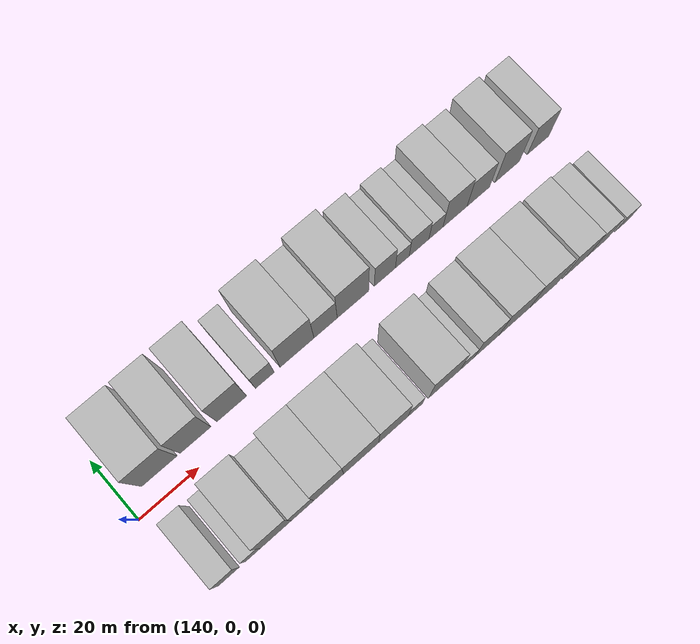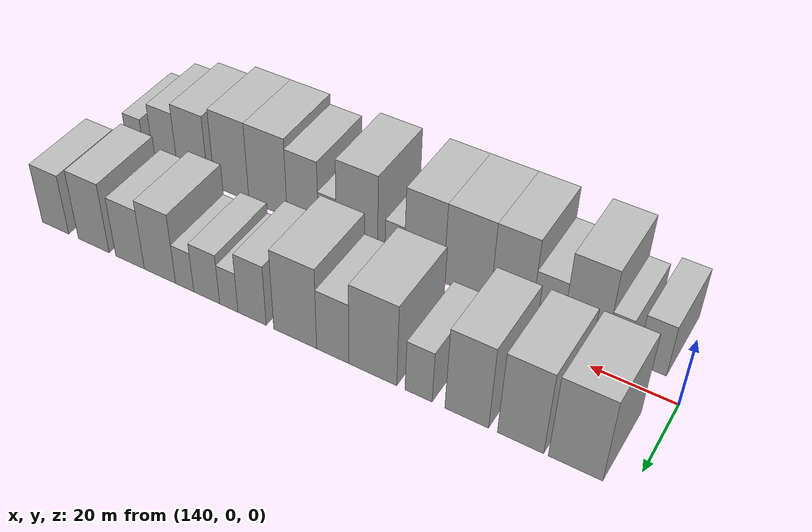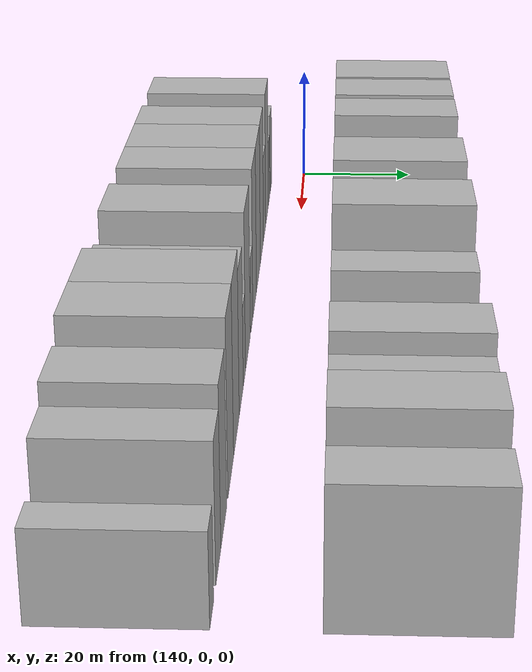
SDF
<sdf version="1.6">
 <world name="default">
  <model name="building_15">
   <static>1</static>
   <pose>151.7849 16.0000 0 0.000000 0.000000 1.570796</pose>
   <link name="link">
    <pose>0 0 12.00 0 0 0</pose>
    <collision name="collision"><geometry><box><size>20.0000 11.7231 24.0000</size></box></geometry></collision>
    <visual name="visual">
     <cast_shadows>0</cast_shadows>
     <geometry><box><size>20.0000 11.7231 24.0000</size></box></geometry>
     <material>
      <script>
       <uri>model://HANNAS_wall/materials/scripts</uri>
       <uri>model://HANNAS_wall/materials/textures</uri>
       <name>vrc/HANNAS_wall</name>
      </script>
     </material>
    </visual>
   </link>
  </model>
  <model name="building_16">
   <static>1</static>
   <pose>163.8093 16.0000 0 0.000000 0.000000 1.570796</pose>
   <link name="link">
    <pose>0 0 12.00 0 0 0</pose>
    <collision name="collision"><geometry><box><size>20.0000 10.3256 24.0000</size></box></geometry></collision>
    <visual name="visual">
     <cast_shadows>0</cast_shadows>
     <geometry><box><size>20.0000 10.3256 24.0000</size></box></geometry>
     <material>
      <script>
       <uri>model://HANNAS_wall/materials/scripts</uri>
       <uri>model://HANNAS_wall/materials/textures</uri>
       <name>vrc/HANNAS_wall</name>
      </script>
     </material>
    </visual>
   </link>
  </model>
  <model name="building_17">
   <static>1</static>
   <pose>176.0331 16.0000 0 0.000000 0.000000 1.570796</pose>
   <link name="link">
    <pose>0 0 12.00 0 0 0</pose>
    <collision name="collision"><geometry><box><size>20.0000 10.1220 24.0000</size></box></geometry></collision>
    <visual name="visual">
     <cast_shadows>0</cast_shadows>
     <geometry><box><size>20.0000 10.1220 24.0000</size></box></geometry>
     <material>
      <script>
       <uri>model://HANNAS_wall/materials/scripts</uri>
       <uri>model://HANNAS_wall/materials/textures</uri>
       <name>vrc/HANNAS_wall</name>
      </script>
     </material>
    </visual>
   </link>
  </model>
  <model name="building_18">
   <static>1</static>
   <pose>187.3365 16.0000 0 0.000000 0.000000 1.570796</pose>
   <link name="link">
    <pose>0 0 7.50 0 0 0</pose>
    <collision name="collision"><geometry><box><size>20.0000 6.4848 15.0000</size></box></geometry></collision>
    <visual name="visual">
     <cast_shadows>0</cast_shadows>
     <geometry><box><size>20.0000 6.4848 15.0000</size></box></geometry>
     <material>
      <script>
       <uri>model://HANNAS_wall/materials/scripts</uri>
       <uri>model://HANNAS_wall/materials/textures</uri>
       <name>vrc/HANNAS_wall</name>
      </script>
     </material>
    </visual>
   </link>
  </model>
  <model name="building_19">
   <static>1</static>
   <pose>198.4865 16.0000 0 0.000000 0.000000 1.570796</pose>
   <link name="link">
    <pose>0 0 12.00 0 0 0</pose>
    <collision name="collision"><geometry><box><size>20.0000 11.8150 24.0000</size></box></geometry></collision>
    <visual name="visual">
     <cast_shadows>0</cast_shadows>
     <geometry><box><size>20.0000 11.8150 24.0000</size></box></geometry>
     <material>
      <script>
       <uri>model://HANNAS_wall/materials/scripts</uri>
       <uri>model://HANNAS_wall/materials/textures</uri>
       <name>vrc/HANNAS_wall</name>
      </script>
     </material>
    </visual>
   </link>
  </model>
  <model name="building_20">
   <static>1</static>
   <pose>208.4849 16.0000 0 0.000000 0.000000 1.570796</pose>
   <link name="link">
    <pose>0 0 9.00 0 0 0</pose>
    <collision name="collision"><geometry><box><size>20.0000 8.1819 18.0000</size></box></geometry></collision>
    <visual name="visual">
     <cast_shadows>0</cast_shadows>
     <geometry><box><size>20.0000 8.1819 18.0000</size></box></geometry>
     <material>
      <script>
       <uri>model://HANNAS_wall/materials/scripts</uri>
       <uri>model://HANNAS_wall/materials/textures</uri>
       <name>vrc/HANNAS_wall</name>
      </script>
     </material>
    </visual>
   </link>
  </model>
  <model name="building_21">
   <static>1</static>
   <pose>218.1784 16.0000 0 0.000000 0.000000 1.570796</pose>
   <link name="link">
    <pose>0 0 12.00 0 0 0</pose>
    <collision name="collision"><geometry><box><size>20.0000 11.2052 24.0000</size></box></geometry></collision>
    <visual name="visual">
     <cast_shadows>0</cast_shadows>
     <geometry><box><size>20.0000 11.2052 24.0000</size></box></geometry>
     <material>
      <script>
       <uri>model://HANNAS_wall/materials/scripts</uri>
       <uri>model://HANNAS_wall/materials/textures</uri>
       <name>vrc/HANNAS_wall</name>
      </script>
     </material>
    </visual>
   </link>
  </model>
  <model name="building_22">
   <static>1</static>
   <pose>229.5810 16.0000 0 0.000000 0.000000 1.570796</pose>
   <link name="link">
    <pose>0 0 9.00 0 0 0</pose>
    <collision name="collision"><geometry><box><size>20.0000 7.5998 18.0000</size></box></geometry></collision>
    <visual name="visual">
     <cast_shadows>0</cast_shadows>
     <geometry><box><size>20.0000 7.5998 18.0000</size></box></geometry>
     <material>
      <script>
       <uri>model://HANNAS_wall/materials/scripts</uri>
       <uri>model://HANNAS_wall/materials/textures</uri>
       <name>vrc/HANNAS_wall</name>
      </script>
     </material>
    </visual>
   </link>
  </model>
  <model name="building_23">
   <static>1</static>
   <pose>235.9039 16.0000 0 0.000000 0.000000 1.570796</pose>
   <link name="link">
    <pose>0 0 6.00 0 0 0</pose>
    <collision name="collision"><geometry><box><size>20.0000 5.0461 12.0000</size></box></geometry></collision>
    <visual name="visual">
     <cast_shadows>0</cast_shadows>
     <geometry><box><size>20.0000 5.0461 12.0000</size></box></geometry>
     <material>
      <script>
       <uri>model://HANNAS_wall/materials/scripts</uri>
       <uri>model://HANNAS_wall/materials/textures</uri>
       <name>vrc/HANNAS_wall</name>
      </script>
     </material>
    </visual>
   </link>
  </model>
  <model name="building_24">
   <static>1</static>
   <pose>242.0188 16.0000 0 0.000000 0.000000 1.570796</pose>
   <link name="link">
    <pose>0 0 7.50 0 0 0</pose>
    <collision name="collision"><geometry><box><size>20.0000 7.1837 15.0000</size></box></geometry></collision>
    <visual name="visual">
     <cast_shadows>0</cast_shadows>
     <geometry><box><size>20.0000 7.1837 15.0000</size></box></geometry>
     <material>
      <script>
       <uri>model://HANNAS_wall/materials/scripts</uri>
       <uri>model://HANNAS_wall/materials/textures</uri>
       <name>vrc/HANNAS_wall</name>
      </script>
     </material>
    </visual>
   </link>
  </model>
  <model name="building_25">
   <static>1</static>
   <pose>248.1818 16.0000 0 0.000000 0.000000 1.570796</pose>
   <link name="link">
    <pose>0 0 6.00 0 0 0</pose>
    <collision name="collision"><geometry><box><size>20.0000 5.1423 12.0000</size></box></geometry></collision>
    <visual name="visual">
     <cast_shadows>0</cast_shadows>
     <geometry><box><size>20.0000 5.1423 12.0000</size></box></geometry>
     <material>
      <script>
       <uri>model://HANNAS_wall/materials/scripts</uri>
       <uri>model://HANNAS_wall/materials/textures</uri>
       <name>vrc/HANNAS_wall</name>
      </script>
     </material>
    </visual>
   </link>
  </model>
  <model name="building_26">
   <static>1</static>
   <pose>255.2734 16.0000 0 0.000000 0.000000 1.570796</pose>
   <link name="link">
    <pose>0 0 10.50 0 0 0</pose>
    <collision name="collision"><geometry><box><size>20.0000 9.0409 21.0000</size></box></geometry></collision>
    <visual name="visual">
     <cast_shadows>0</cast_shadows>
     <geometry><box><size>20.0000 9.0409 21.0000</size></box></geometry>
     <material>
      <script>
       <uri>model://HANNAS_wall/materials/scripts</uri>
       <uri>model://HANNAS_wall/materials/textures</uri>
       <name>vrc/HANNAS_wall</name>
      </script>
     </material>
    </visual>
   </link>
  </model>
  <model name="building_27">
   <static>1</static>
   <pose>264.0254 16.0000 0 0.000000 0.000000 1.570796</pose>
   <link name="link">
    <pose>0 0 9.00 0 0 0</pose>
    <collision name="collision"><geometry><box><size>20.0000 8.4632 18.0000</size></box></geometry></collision>
    <visual name="visual">
     <cast_shadows>0</cast_shadows>
     <geometry><box><size>20.0000 8.4632 18.0000</size></box></geometry>
     <material>
      <script>
       <uri>model://HANNAS_wall/materials/scripts</uri>
       <uri>model://HANNAS_wall/materials/textures</uri>
       <name>vrc/HANNAS_wall</name>
      </script>
     </material>
    </visual>
   </link>
  </model>
  <model name="building_28">
   <static>1</static>
   <pose>274.9208 16.0000 0 0.000000 0.000000 1.570796</pose>
   <link name="link">
    <pose>0 0 10.50 0 0 0</pose>
    <collision name="collision"><geometry><box><size>20.0000 9.3276 21.0000</size></box></geometry></collision>
    <visual name="visual">
     <cast_shadows>0</cast_shadows>
     <geometry><box><size>20.0000 9.3276 21.0000</size></box></geometry>
     <material>
      <script>
       <uri>model://HANNAS_wall/materials/scripts</uri>
       <uri>model://HANNAS_wall/materials/textures</uri>
       <name>vrc/HANNAS_wall</name>
      </script>
     </material>
    </visual>
   </link>
  </model>
  <model name="building_29">
   <static>1</static>
   <pose>286.6977 16.0000 0 0.000000 0.000000 1.570796</pose>
   <link name="link">
    <pose>0 0 9.00 0 0 0</pose>
    <collision name="collision"><geometry><box><size>20.0000 8.2263 18.0000</size></box></geometry></collision>
    <visual name="visual">
     <cast_shadows>0</cast_shadows>
     <geometry><box><size>20.0000 8.2263 18.0000</size></box></geometry>
     <material>
      <script>
       <uri>model://HANNAS_wall/materials/scripts</uri>
       <uri>model://HANNAS_wall/materials/textures</uri>
       <name>vrc/HANNAS_wall</name>
      </script>
     </material>
    </visual>
   </link>
  </model>
  <model name="building_45">
   <static>1</static>
   <pose>148.4781 -16.0000 0 0.000000 0.000000 1.570796</pose>
   <link name="link">
    <pose>0 0 7.50 0 0 0</pose>
    <collision name="collision"><geometry><box><size>20.0000 6.7985 15.0000</size></box></geometry></collision>
    <visual name="visual">
     <cast_shadows>0</cast_shadows>
     <geometry><box><size>20.0000 6.7985 15.0000</size></box></geometry>
     <material>
      <script>
       <uri>model://HANNAS_wall/materials/scripts</uri>
       <uri>model://HANNAS_wall/materials/textures</uri>
       <name>vrc/HANNAS_wall</name>
      </script>
     </material>
    </visual>
   </link>
  </model>
  <model name="building_46">
   <static>1</static>
   <pose>156.3939 -16.0000 0 0.000000 0.000000 1.570796</pose>
   <link name="link">
    <pose>0 0 6.00 0 0 0</pose>
    <collision name="collision"><geometry><box><size>20.0000 5.0331 12.0000</size></box></geometry></collision>
    <visual name="visual">
     <cast_shadows>0</cast_shadows>
     <geometry><box><size>20.0000 5.0331 12.0000</size></box></geometry>
     <material>
      <script>
       <uri>model://HANNAS_wall/materials/scripts</uri>
       <uri>model://HANNAS_wall/materials/textures</uri>
       <name>vrc/HANNAS_wall</name>
      </script>
     </material>
    </visual>
   </link>
  </model>
  <model name="building_47">
   <static>1</static>
   <pose>164.0738 -16.0000 0 0.000000 0.000000 1.570796</pose>
   <link name="link">
    <pose>0 0 12.00 0 0 0</pose>
    <collision name="collision"><geometry><box><size>20.0000 10.3267 24.0000</size></box></geometry></collision>
    <visual name="visual">
     <cast_shadows>0</cast_shadows>
     <geometry><box><size>20.0000 10.3267 24.0000</size></box></geometry>
     <material>
      <script>
       <uri>model://HANNAS_wall/materials/scripts</uri>
       <uri>model://HANNAS_wall/materials/textures</uri>
       <name>vrc/HANNAS_wall</name>
      </script>
     </material>
    </visual>
   </link>
  </model>
  <model name="building_48">
   <static>1</static>
   <pose>172.9476 -16.0000 0 0.000000 0.000000 1.570796</pose>
   <link name="link">
    <pose>0 0 7.50 0 0 0</pose>
    <collision name="collision"><geometry><box><size>20.0000 7.4207 15.0000</size></box></geometry></collision>
    <visual name="visual">
     <cast_shadows>0</cast_shadows>
     <geometry><box><size>20.0000 7.4207 15.0000</size></box></geometry>
     <material>
      <script>
       <uri>model://HANNAS_wall/materials/scripts</uri>
       <uri>model://HANNAS_wall/materials/textures</uri>
       <name>vrc/HANNAS_wall</name>
      </script>
     </material>
    </visual>
   </link>
  </model>
  <model name="building_49">
   <static>1</static>
   <pose>181.7436 -16.0000 0 0.000000 0.000000 1.570796</pose>
   <link name="link">
    <pose>0 0 12.00 0 0 0</pose>
    <collision name="collision"><geometry><box><size>20.0000 10.1713 24.0000</size></box></geometry></collision>
    <visual name="visual">
     <cast_shadows>0</cast_shadows>
     <geometry><box><size>20.0000 10.1713 24.0000</size></box></geometry>
     <material>
      <script>
       <uri>model://HANNAS_wall/materials/scripts</uri>
       <uri>model://HANNAS_wall/materials/textures</uri>
       <name>vrc/HANNAS_wall</name>
      </script>
     </material>
    </visual>
   </link>
  </model>
  <model name="building_50">
   <static>1</static>
   <pose>192.7935 -16.0000 0 0.000000 0.000000 1.570796</pose>
   <link name="link">
    <pose>0 0 12.00 0 0 0</pose>
    <collision name="collision"><geometry><box><size>20.0000 11.9285 24.0000</size></box></geometry></collision>
    <visual name="visual">
     <cast_shadows>0</cast_shadows>
     <geometry><box><size>20.0000 11.9285 24.0000</size></box></geometry>
     <material>
      <script>
       <uri>model://HANNAS_wall/materials/scripts</uri>
       <uri>model://HANNAS_wall/materials/textures</uri>
       <name>vrc/HANNAS_wall</name>
      </script>
     </material>
    </visual>
   </link>
  </model>
  <model name="building_51">
   <static>1</static>
   <pose>203.9417 -16.0000 0 0.000000 0.000000 1.570796</pose>
   <link name="link">
    <pose>0 0 12.00 0 0 0</pose>
    <collision name="collision"><geometry><box><size>20.0000 10.3678 24.0000</size></box></geometry></collision>
    <visual name="visual">
     <cast_shadows>0</cast_shadows>
     <geometry><box><size>20.0000 10.3678 24.0000</size></box></geometry>
     <material>
      <script>
       <uri>model://HANNAS_wall/materials/scripts</uri>
       <uri>model://HANNAS_wall/materials/textures</uri>
       <name>vrc/HANNAS_wall</name>
      </script>
     </material>
    </visual>
   </link>
  </model>
  <model name="building_52">
   <static>1</static>
   <pose>211.7009 -16.0000 0 0.000000 0.000000 1.570796</pose>
   <link name="link">
    <pose>0 0 6.00 0 0 0</pose>
    <collision name="collision"><geometry><box><size>20.0000 5.1506 12.0000</size></box></geometry></collision>
    <visual name="visual">
     <cast_shadows>0</cast_shadows>
     <geometry><box><size>20.0000 5.1506 12.0000</size></box></geometry>
     <material>
      <script>
       <uri>model://HANNAS_wall/materials/scripts</uri>
       <uri>model://HANNAS_wall/materials/textures</uri>
       <name>vrc/HANNAS_wall</name>
      </script>
     </material>
    </visual>
   </link>
  </model>
  <model name="building_53">
   <static>1</static>
   <pose>221.9245 -16.0000 0 0.000000 0.000000 1.570796</pose>
   <link name="link">
    <pose>0 0 12.00 0 0 0</pose>
    <collision name="collision"><geometry><box><size>20.0000 11.2965 24.0000</size></box></geometry></collision>
    <visual name="visual">
     <cast_shadows>0</cast_shadows>
     <geometry><box><size>20.0000 11.2965 24.0000</size></box></geometry>
     <material>
      <script>
       <uri>model://HANNAS_wall/materials/scripts</uri>
       <uri>model://HANNAS_wall/materials/textures</uri>
       <name>vrc/HANNAS_wall</name>
      </script>
     </material>
    </visual>
   </link>
  </model>
  <model name="building_54">
   <static>1</static>
   <pose>230.1069 -16.0000 0 0.000000 0.000000 1.570796</pose>
   <link name="link">
    <pose>0 0 6.00 0 0 0</pose>
    <collision name="collision"><geometry><box><size>20.0000 5.0684 12.0000</size></box></geometry></collision>
    <visual name="visual">
     <cast_shadows>0</cast_shadows>
     <geometry><box><size>20.0000 5.0684 12.0000</size></box></geometry>
     <material>
      <script>
       <uri>model://HANNAS_wall/materials/scripts</uri>
       <uri>model://HANNAS_wall/materials/textures</uri>
       <name>vrc/HANNAS_wall</name>
      </script>
     </material>
    </visual>
   </link>
  </model>
  <model name="building_55">
   <static>1</static>
   <pose>237.0817 -16.0000 0 0.000000 0.000000 1.570796</pose>
   <link name="link">
    <pose>0 0 10.50 0 0 0</pose>
    <collision name="collision"><geometry><box><size>20.0000 8.8810 21.0000</size></box></geometry></collision>
    <visual name="visual">
     <cast_shadows>0</cast_shadows>
     <geometry><box><size>20.0000 8.8810 21.0000</size></box></geometry>
     <material>
      <script>
       <uri>model://HANNAS_wall/materials/scripts</uri>
       <uri>model://HANNAS_wall/materials/textures</uri>
       <name>vrc/HANNAS_wall</name>
      </script>
     </material>
    </visual>
   </link>
  </model>
  <model name="building_56">
   <static>1</static>
   <pose>247.1463 -16.0000 0 0.000000 0.000000 1.570796</pose>
   <link name="link">
    <pose>0 0 12.00 0 0 0</pose>
    <collision name="collision"><geometry><box><size>20.0000 11.2482 24.0000</size></box></geometry></collision>
    <visual name="visual">
     <cast_shadows>0</cast_shadows>
     <geometry><box><size>20.0000 11.2482 24.0000</size></box></geometry>
     <material>
      <script>
       <uri>model://HANNAS_wall/materials/scripts</uri>
       <uri>model://HANNAS_wall/materials/textures</uri>
       <name>vrc/HANNAS_wall</name>
      </script>
     </material>
    </visual>
   </link>
  </model>
  <model name="building_57">
   <static>1</static>
   <pose>257.9412 -16.0000 0 0.000000 0.000000 1.570796</pose>
   <link name="link">
    <pose>0 0 12.00 0 0 0</pose>
    <collision name="collision"><geometry><box><size>20.0000 10.3418 24.0000</size></box></geometry></collision>
    <visual name="visual">
     <cast_shadows>0</cast_shadows>
     <geometry><box><size>20.0000 10.3418 24.0000</size></box></geometry>
     <material>
      <script>
       <uri>model://HANNAS_wall/materials/scripts</uri>
       <uri>model://HANNAS_wall/materials/textures</uri>
       <name>vrc/HANNAS_wall</name>
      </script>
     </material>
    </visual>
   </link>
  </model>
  <model name="building_58">
   <static>1</static>
   <pose>269.8274 -16.0000 0 0.000000 0.000000 1.570796</pose>
   <link name="link">
    <pose>0 0 10.50 0 0 0</pose>
    <collision name="collision"><geometry><box><size>20.0000 9.4306 21.0000</size></box></geometry></collision>
    <visual name="visual">
     <cast_shadows>0</cast_shadows>
     <geometry><box><size>20.0000 9.4306 21.0000</size></box></geometry>
     <material>
      <script>
       <uri>model://HANNAS_wall/materials/scripts</uri>
       <uri>model://HANNAS_wall/materials/textures</uri>
       <name>vrc/HANNAS_wall</name>
      </script>
     </material>
    </visual>
   </link>
  </model>
  <model name="building_59">
   <static>1</static>
   <pose>278.3209 -16.0000 0 0.000000 0.000000 1.570796</pose>
   <link name="link">
    <pose>0 0 9.00 0 0 0</pose>
    <collision name="collision"><geometry><box><size>20.0000 7.5563 18.0000</size></box></geometry></collision>
    <visual name="visual">
     <cast_shadows>0</cast_shadows>
     <geometry><box><size>20.0000 7.5563 18.0000</size></box></geometry>
     <material>
      <script>
       <uri>model://HANNAS_wall/materials/scripts</uri>
       <uri>model://HANNAS_wall/materials/textures</uri>
       <name>vrc/HANNAS_wall</name>
      </script>
     </material>
    </visual>
   </link>
  </model>
  <model name="building_60">
   <static>1</static>
   <pose>287.8065 -16.0000 0 0.000000 0.000000 1.570796</pose>
   <link name="link">
    <pose>0 0 6.00 0 0 0</pose>
    <collision name="collision"><geometry><box><size>20.0000 5.4150 12.0000</size></box></geometry></collision>
    <visual name="visual">
     <cast_shadows>0</cast_shadows>
     <geometry><box><size>20.0000 5.4150 12.0000</size></box></geometry>
     <material>
      <script>
       <uri>model://HANNAS_wall/materials/scripts</uri>
       <uri>model://HANNAS_wall/materials/textures</uri>
       <name>vrc/HANNAS_wall</name>
      </script>
     </material>
    </visual>
   </link>
  </model>
 </world>
</sdf>
